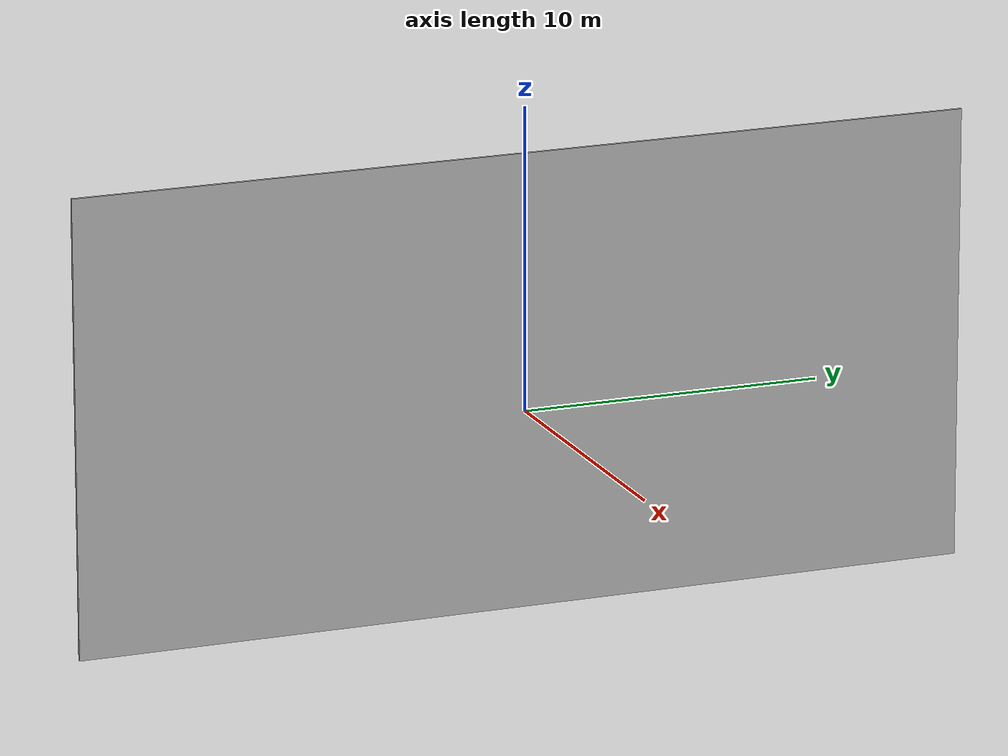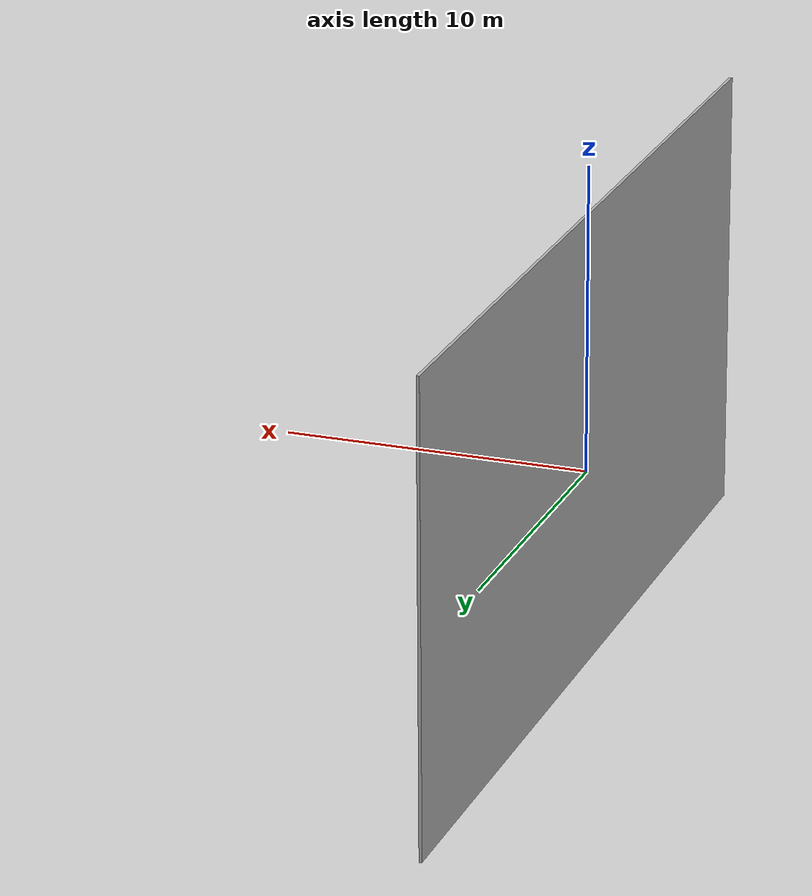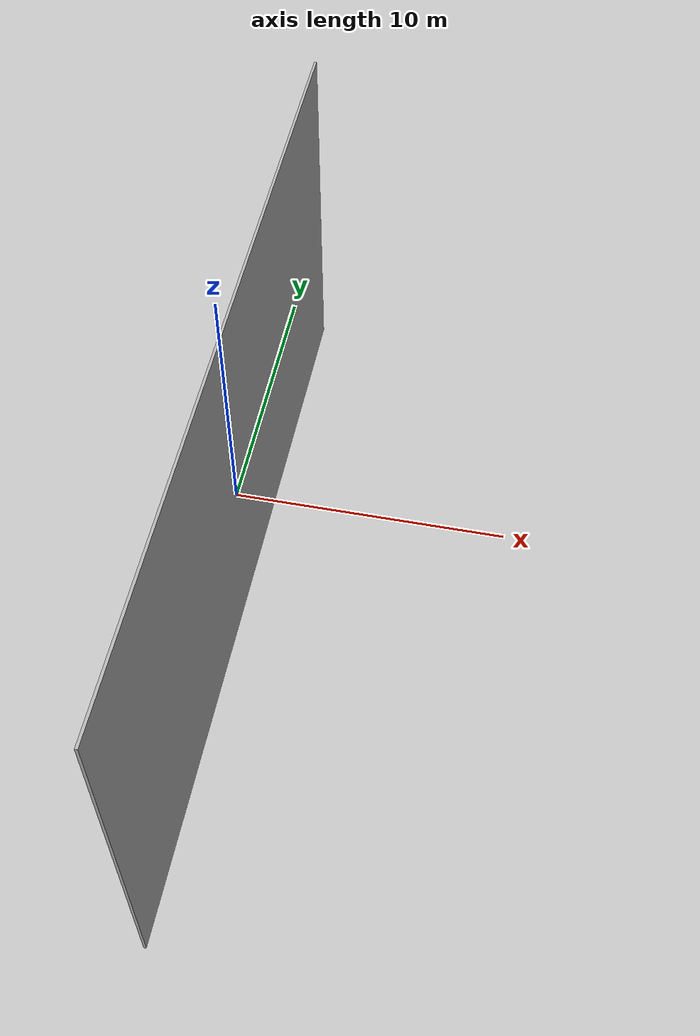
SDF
<?xml version="1.0" ?>
<sdf version="1.6">
  <model name="canvas_screen">
    <!-- модель точно НЕ статична -->
    <static>false</static>

    <link name="screen_link">
      <!-- Стартова поза -->
      <pose>0 0 1 0 0 0</pose>

      <!-- Без гравітації, щоб не падало -->
      <gravity>false</gravity>

      <inertial>
        <mass>1.0</mass>
        <inertia>
          <ixx>1</ixx>
          <iyy>1</iyy>
          <izz>1</izz>
          <ixy>0</ixy>
          <ixz>0</ixz>
          <iyz>0</iyz>
        </inertia>
      </inertial>

      <!-- Колізія: тонкий бокс, щоб по ньому легко клікнути -->
      <collision name="screen_collision">
        <pose>0 0 0 0 0 0</pose>
        <geometry>
          <box>
            <!-- товщина по X, ширина по Y, висота по Z -->
            <size>0.1 20 15</size>
          </box>
        </geometry>
        <surface>
          <contact>
            <ode/>
          </contact>
        </surface>
      </collision>

      <!-- Візуал: теж бокс, щоб плагіну було все одно -->
      <visual name="screen_visual">
        <pose>0 0 0 0 0 0</pose>
        <geometry>
          <box>
            <size>0.1 30 15</size>
          </box>
        </geometry>

        <material>
          <ambient>0.7 0.7 0.7 1</ambient>
          <diffuse>0.7 0.7 0.7 1</diffuse>
        </material>

        <plugin name="canvas_plugin" filename="libCanvasPlugin.so">
          <images_dir>/home/nano/ardupilot_gazebo/images</images_dir>
          <width>1024</width>
          <height>1024</height>
          <interval>1.0</interval>
        </plugin>
      </visual>
    </link>
  </model>
</sdf>
